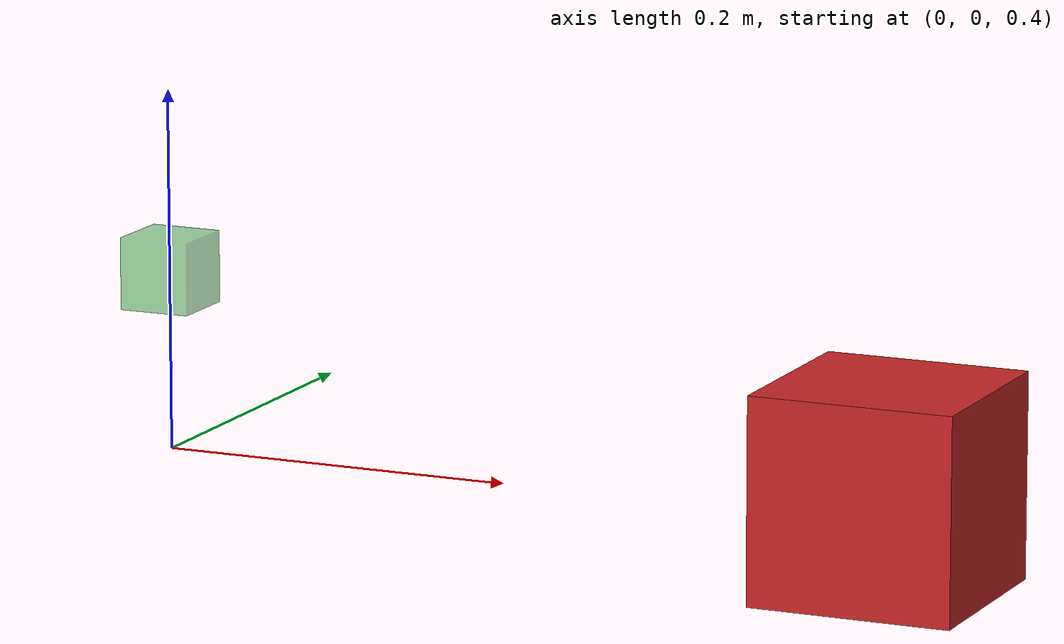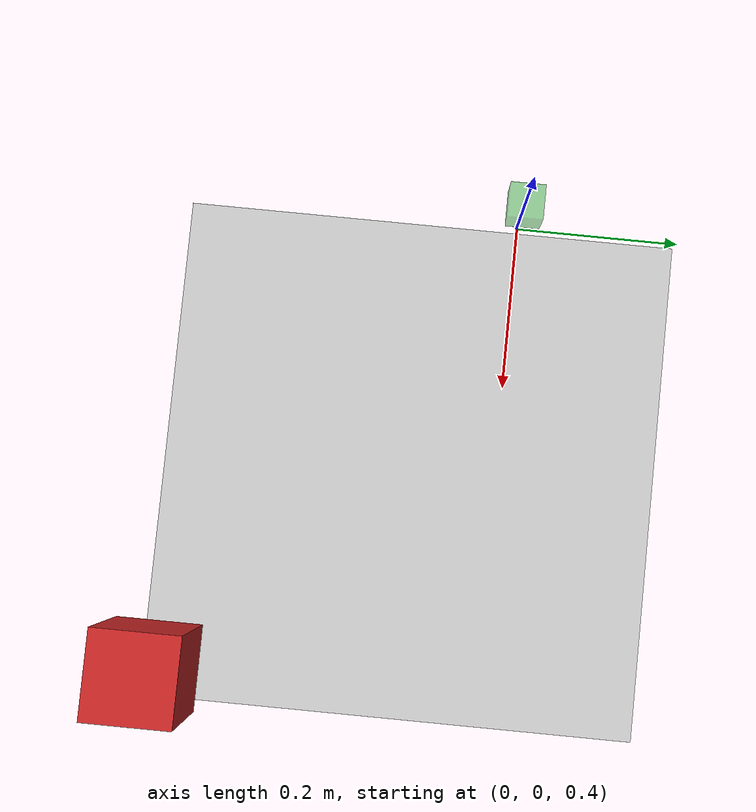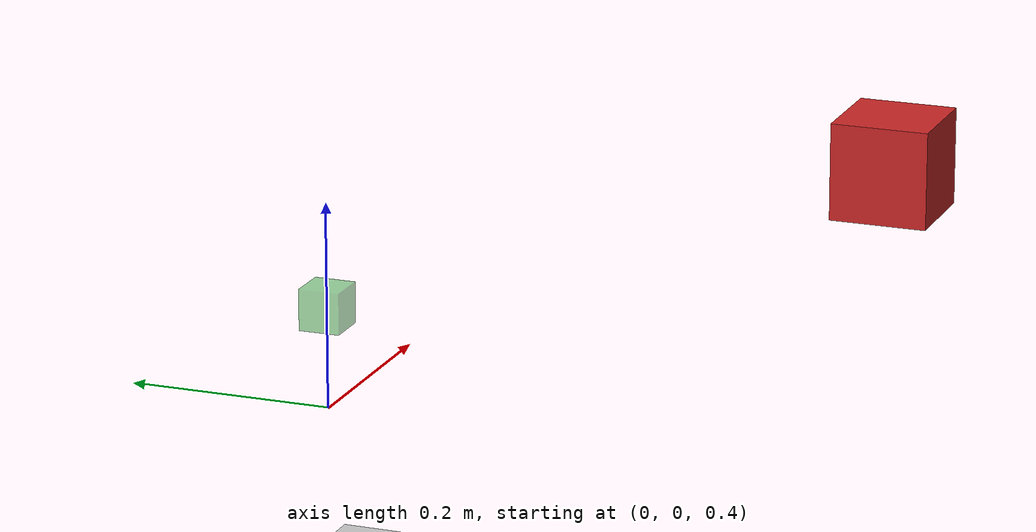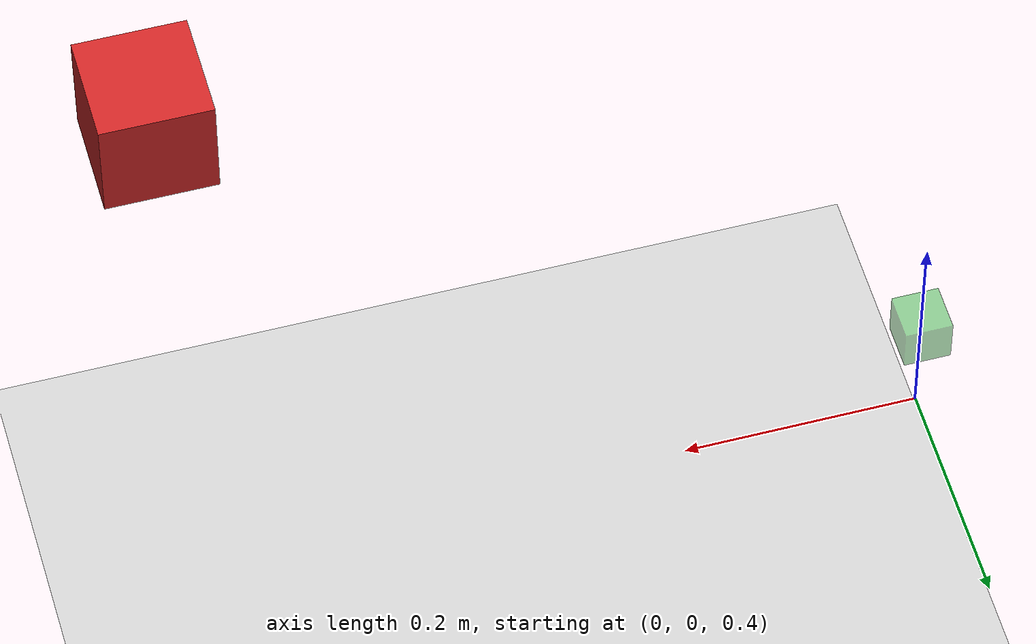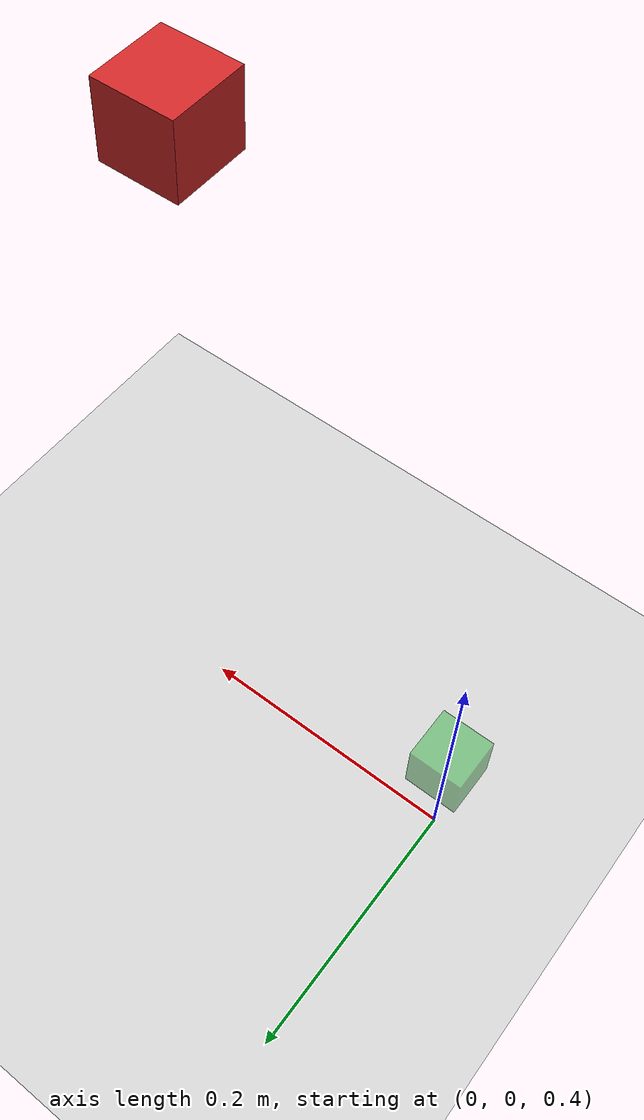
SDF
<sdf version="1.6">
 <world name="default">
  <model name="ground_plane">
   <static>1</static>
   <link name="link">
    <collision name="collision">
     <geometry><plane><normal>0 0 1</normal><size>100 100</size></plane></geometry>
     <surface><friction><ode><mu>100</mu><mu2>50</mu2></ode></friction></surface>
    </collision>
    <visual name="visual">
     <cast_shadows>0</cast_shadows>
     <geometry><plane><normal>0 0 1</normal><size>100 100</size></plane></geometry>
     <material>
      <script><uri>file://media/materials/scripts/gazebo.material</uri><name>Gazebo/Grey</name></script>
     </material>
    </visual>
   </link>
  </model>
  <light name="sun" type="directional">
   <pose>0 0 10 0 -0 0</pose>
   <diffuse>0.8 0.8 0.8 1</diffuse>
   <specular>0.2 0.2 0.2 1</specular>
   <attenuation>
    <range>1000</range>
    <constant>0.9</constant>
    <linear>0.01</linear>
    <quadratic>0.001</quadratic>
   </attenuation>
   <direction>-0.5 0.1 -0.9</direction>
  </light>
  <gravity>0 0 -9.81</gravity>
  <magnetic_field>6e-06 2.3e-05 -4.2e-05</magnetic_field>
  <atmosphere type="adiabatic"/>
  <physics name="default_physics" default="0" type="ode">
   <max_step_size>0.001</max_step_size>
   <real_time_factor>1</real_time_factor>
   <real_time_update_rate>1000</real_time_update_rate>
  </physics>
  <scene><ambient>0.4 0.4 0.4 1</ambient><background>0.7 0.7 0.7 1</background><shadows>1</shadows></scene>
  <spherical_coordinates>
   <surface_model>EARTH_WGS84</surface_model>
   <latitude_deg>0</latitude_deg>
   <longitude_deg>0</longitude_deg>
   <elevation>0</elevation>
   <heading_deg>0</heading_deg>
  </spherical_coordinates>
  <model name="cube">
   <link name="link_cube">
    <inertial>
     <mass>0.1</mass>
     <inertia><ixx>0.0001</ixx><ixy>0</ixy><ixz>0</ixz><iyy>0.0001</iyy><iyz>0</iyz><izz>0.0001</izz></inertia>
    </inertial>
    <visual name="visual">
     <geometry>
      <mesh>
       <uri>/home/viviana/catkin_ws/src/DogBotV4/ROS/src/dogbot_description/meshes/cube.dae</uri>
       <scale>0.05 0.05 0.05</scale>
      </mesh>
     </geometry>
     <material>
      <lighting>1</lighting>
      <script><uri>file://media/materials/scripts/gazebo.material</uri><name>Gazebo/Red</name></script>
      <shader type="pixel"/>
     </material>
    </visual>
    <collision name="collision">
     <geometry><box><size>0.1 0.1 0.1</size></box></geometry>
     <surface>
      <friction>
       <ode><mu>1</mu><mu2>1</mu2><fdir1>0 0 0</fdir1><slip1>0</slip1><slip2>0</slip2></ode>
       <torsional>
        <coefficient>1</coefficient>
        <patch_radius>0</patch_radius>
        <surface_radius>0</surface_radius>
        <use_patch_radius>1</use_patch_radius>
        <ode><slip>0</slip></ode>
       </torsional>
      </friction>
      <bounce><restitution_coefficient>0</restitution_coefficient><threshold>1e+06</threshold></bounce>
      <contact>
       <collide_without_contact>0</collide_without_contact>
       <collide_without_contact_bitmask>1</collide_without_contact_bitmask>
       <collide_bitmask>1</collide_bitmask>
       <ode>
        <soft_cfm>0</soft_cfm>
        <soft_erp>0.2</soft_erp>
        <kp>1e+13</kp>
        <kd>1</kd>
        <max_vel>0.01</max_vel>
        <min_depth>0</min_depth>
       </ode>
       <bullet>
        <split_impulse>1</split_impulse>
        <split_impulse_penetration_threshold>-0.01</split_impulse_penetration_threshold>
        <soft_cfm>0</soft_cfm>
        <soft_erp>0.2</soft_erp>
        <kp>1e+13</kp>
        <kd>1</kd>
       </bullet>
      </contact>
     </surface>
    </collision>
   </link>
   <pose>0.564973 -0.372973 0.52 0 -0 0</pose>
  </model>
  <model name="des_cube">
   <pose>0 0 0.5 0 -0 0</pose>
   <link name="des_cube">
    <visual name="visual">
     <geometry>
      <mesh>
       <uri>/home/viviana/catkin_ws/src/DogBotV4/ROS/src/dogbot_description/meshes/cube.dae</uri>
       <scale>0.02 0.02 0.02</scale>
      </mesh>
     </geometry>
     <material>
      <script><name>Gazebo/Green</name><uri>file://media/materials/scripts/gazebo.material</uri></script>
     </material>
     <transparency>0.5</transparency>
    </visual>
   </link>
  </model>
 </world>
</sdf>
